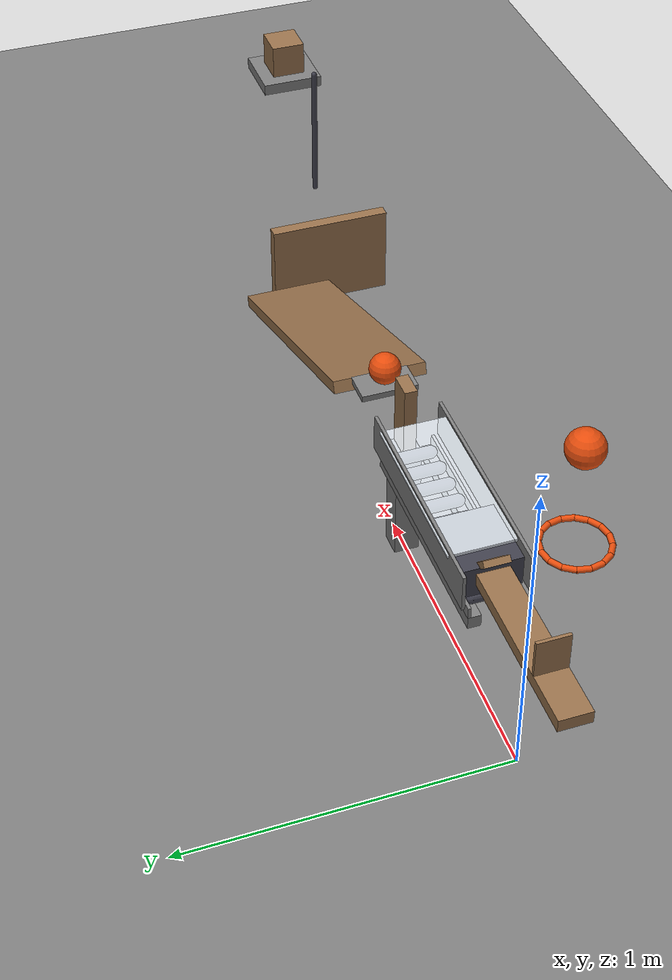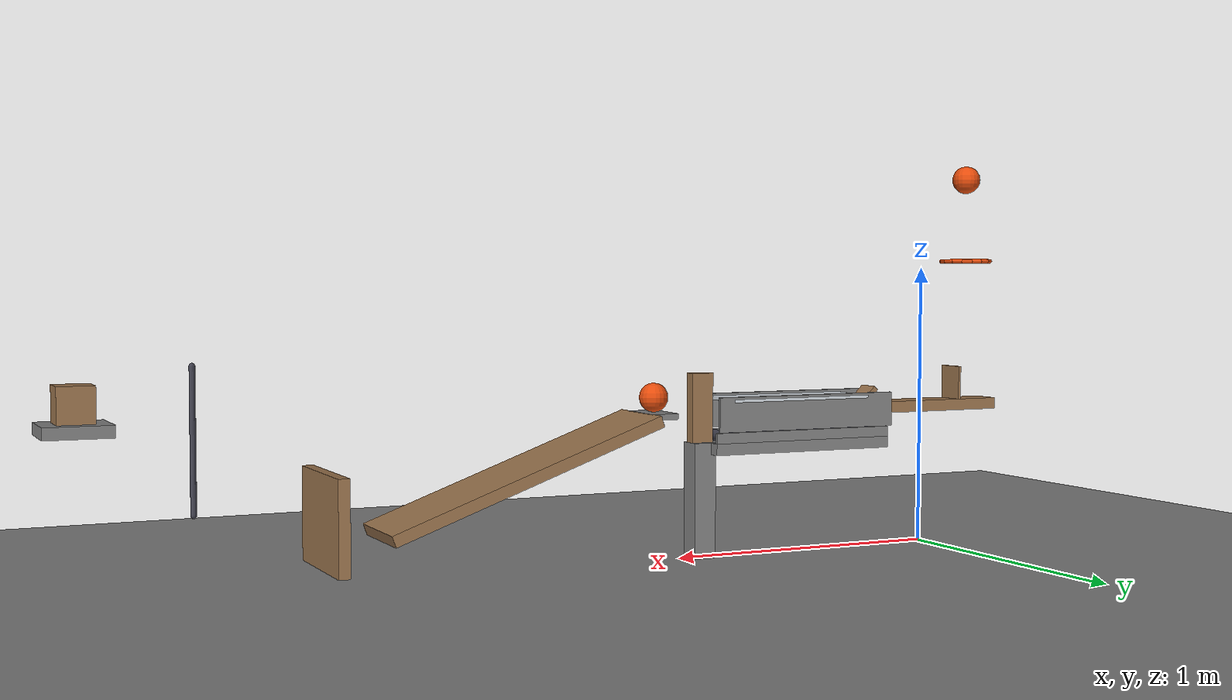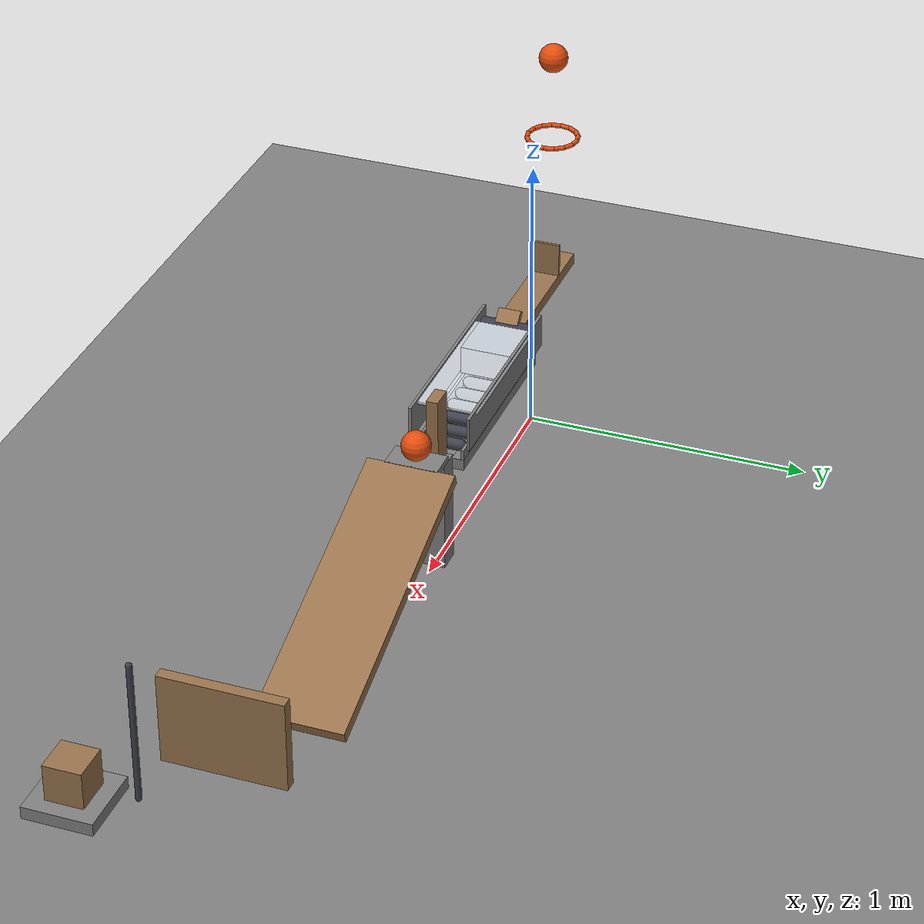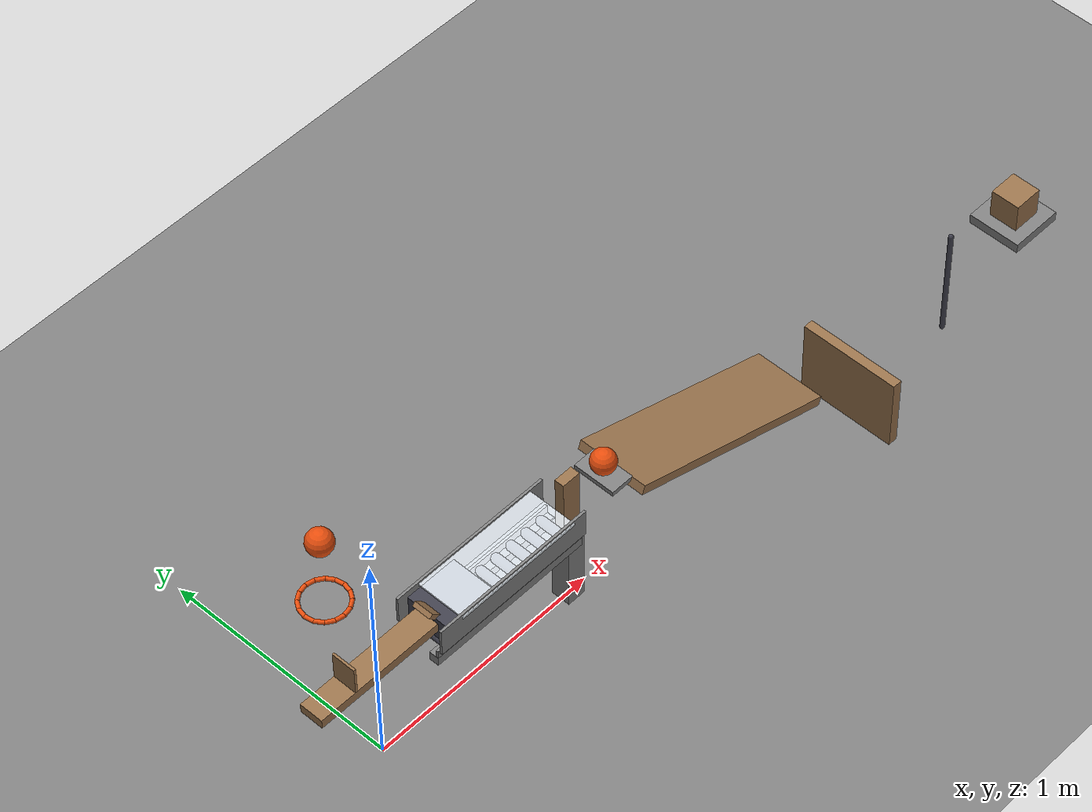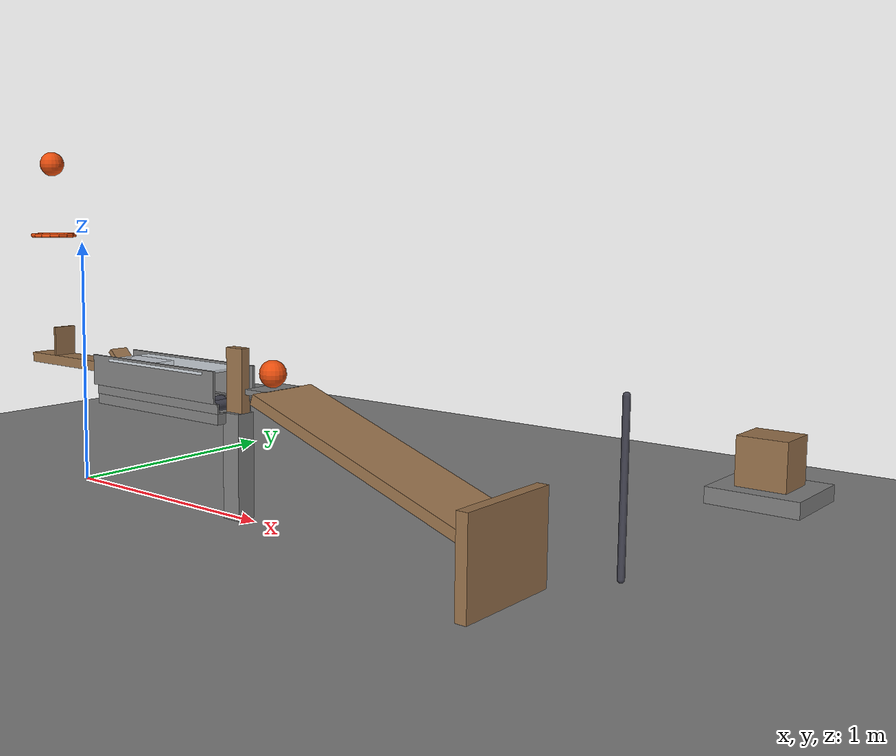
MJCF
<mujoco model="revised_gravity_driven_contact_chain">
  <compiler angle="radian"/>
  <option timestep="0.002"/>
  <worldbody>
    <geom name="floor" type="plane" size="8 8 0.1" friction="0.72 0 0"/>
    <body name="ring1">
      <geom name="ring1_00" type="capsule" size="0.008" fromto="-0.10999 0 1.02627 -0.116689 0.0336761 1.02627" friction="0.72 0 0" solref="0.01 1" rgba="0.9 0.3 0.05 1"/>
      <geom name="ring1_01" type="capsule" size="0.008" fromto="-0.116689 0.0336761 1.02627 -0.135765 0.0622254 1.02627" friction="0.72 0 0" solref="0.01 1" rgba="0.9 0.3 0.05 1"/>
      <geom name="ring1_02" type="capsule" size="0.008" fromto="-0.135765 0.0622254 1.02627 -0.164314 0.0813014 1.02627" friction="0.72 0 0" solref="0.01 1" rgba="0.9 0.3 0.05 1"/>
      <geom name="ring1_03" type="capsule" size="0.008" fromto="-0.164314 0.0813014 1.02627 -0.19799 0.088 1.02627" friction="0.72 0 0" solref="0.01 1" rgba="0.9 0.3 0.05 1"/>
      <geom name="ring1_04" type="capsule" size="0.008" fromto="-0.19799 0.088 1.02627 -0.231666 0.0813014 1.02627" friction="0.72 0 0" solref="0.01 1" rgba="0.9 0.3 0.05 1"/>
      <geom name="ring1_05" type="capsule" size="0.008" fromto="-0.231666 0.0813014 1.02627 -0.260215 0.0622254 1.02627" friction="0.72 0 0" solref="0.01 1" rgba="0.9 0.3 0.05 1"/>
      <geom name="ring1_06" type="capsule" size="0.008" fromto="-0.260215 0.0622254 1.02627 -0.279291 0.0336761 1.02627" friction="0.72 0 0" solref="0.01 1" rgba="0.9 0.3 0.05 1"/>
      <geom name="ring1_07" type="capsule" size="0.008" fromto="-0.279291 0.0336761 1.02627 -0.28599 1.07769e-17 1.02627" friction="0.72 0 0" solref="0.01 1" rgba="0.9 0.3 0.05 1"/>
      <geom name="ring1_08" type="capsule" size="0.008" fromto="-0.28599 1.07769e-17 1.02627 -0.279291 -0.0336761 1.02627" friction="0.72 0 0" solref="0.01 1" rgba="0.9 0.3 0.05 1"/>
      <geom name="ring1_09" type="capsule" size="0.008" fromto="-0.279291 -0.0336761 1.02627 -0.260215 -0.0622254 1.02627" friction="0.72 0 0" solref="0.01 1" rgba="0.9 0.3 0.05 1"/>
      <geom name="ring1_10" type="capsule" size="0.008" fromto="-0.260215 -0.0622254 1.02627 -0.231666 -0.0813014 1.02627" friction="0.72 0 0" solref="0.01 1" rgba="0.9 0.3 0.05 1"/>
      <geom name="ring1_11" type="capsule" size="0.008" fromto="-0.231666 -0.0813014 1.02627 -0.19799 -0.088 1.02627" friction="0.72 0 0" solref="0.01 1" rgba="0.9 0.3 0.05 1"/>
      <geom name="ring1_12" type="capsule" size="0.008" fromto="-0.19799 -0.088 1.02627 -0.164314 -0.0813014 1.02627" friction="0.72 0 0" solref="0.01 1" rgba="0.9 0.3 0.05 1"/>
      <geom name="ring1_13" type="capsule" size="0.008" fromto="-0.164314 -0.0813014 1.02627 -0.135765 -0.0622254 1.02627" friction="0.72 0 0" solref="0.01 1" rgba="0.9 0.3 0.05 1"/>
      <geom name="ring1_14" type="capsule" size="0.008" fromto="-0.135765 -0.0622254 1.02627 -0.116689 -0.0336761 1.02627" friction="0.72 0 0" solref="0.01 1" rgba="0.9 0.3 0.05 1"/>
      <geom name="ring1_15" type="capsule" size="0.008" fromto="-0.116689 -0.0336761 1.02627 -0.10999 -2.15538e-17 1.02627" friction="0.72 0 0" solref="0.01 1" rgba="0.9 0.3 0.05 1"/>
    </body>
    <body name="ball1" pos="-0.19799 0 1.32627">
      <freejoint/>
      <geom name="ball1" type="sphere" pos="0 0 0" size="0.05" mass="0.2" condim="6" friction="0.72 0 0" solref="0.01 1" rgba="0.9 0.3 0.05 1"/>
    </body>
    <body name="lever1" pos="0 0 0.5">
      <joint name="lever_hinge" type="hinge" pos="0 0 0" axis="0 1 0" limited="true" range="0 0.785398" damping="0.04"/>
      <geom name="lever1" type="box" pos="0 0 0" size="0.3 0.05 0.02" mass="0.498" friction="0.72 0 0" solref="0.01 1" rgba="0.6 0.45 0.3 1"/>
      <geom name="lever striking face" type="box" pos="0.28 0 0.01" size="0.0848528 0.04 0.01" euler="0 0.785398 0" mass="0.001" friction="0.72 0 0" solref="0.01 1" rgba="0.6 0.45 0.3 1"/>
      <geom name="lever ball stop" type="box" pos="-0.14 0 0.08" size="0.005 0.05 0.06" mass="0.001" friction="0.72 0 0" solref="0.01 1" rgba="0.6 0.45 0.3 1"/>
    </body>
    <body name="left bearing rail">
      <geom name="left bearing rail" type="box" pos="0.55 0.065 0.38" size="0.35 0.02 0.02" friction="0.72 0 0" solref="0.01 1"/>
    </body>
    <body name="right bearing rail">
      <geom name="right bearing rail" type="box" pos="0.55 -0.065 0.38" size="0.35 0.02 0.02" friction="0.72 0 0" solref="0.01 1"/>
    </body>
    <body name="track rollers1" pos="0.255 0 0.42">
      <freejoint/>
      <geom name="track rollers1" type="capsule" size="0.02" fromto="0 0.055 0 0 -0.055 0" mass="0.002" friction="0.72 0 0" solref="0.01 1" rgba="0.25 0.25 0.3 1"/>
    </body>
    <body name="track rollers2" pos="0.329 0 0.42">
      <freejoint/>
      <geom name="track rollers2" type="capsule" size="0.02" fromto="0 0.055 0 0 -0.055 0" mass="0.002" friction="0.72 0 0" solref="0.01 1" rgba="0.25 0.25 0.3 1"/>
    </body>
    <body name="track rollers3" pos="0.403 0 0.42">
      <freejoint/>
      <geom name="track rollers3" type="capsule" size="0.02" fromto="0 0.055 0 0 -0.055 0" mass="0.002" friction="0.72 0 0" solref="0.01 1" rgba="0.25 0.25 0.3 1"/>
    </body>
    <body name="track rollers4" pos="0.477 0 0.42">
      <freejoint/>
      <geom name="track rollers4" type="capsule" size="0.02" fromto="0 0.055 0 0 -0.055 0" mass="0.002" friction="0.72 0 0" solref="0.01 1" rgba="0.25 0.25 0.3 1"/>
    </body>
    <body name="track rollers5" pos="0.551 0 0.42">
      <freejoint/>
      <geom name="track rollers5" type="capsule" size="0.02" fromto="0 0.055 0 0 -0.055 0" mass="0.002" friction="0.72 0 0" solref="0.01 1" rgba="0.25 0.25 0.3 1"/>
    </body>
    <body name="track rollers6" pos="0.625 0 0.42">
      <freejoint/>
      <geom name="track rollers6" type="capsule" size="0.02" fromto="0 0.055 0 0 -0.055 0" mass="0.002" friction="0.72 0 0" solref="0.01 1" rgba="0.25 0.25 0.3 1"/>
    </body>
    <body name="track rollers7" pos="0.699 0 0.42">
      <freejoint/>
      <geom name="track rollers7" type="capsule" size="0.02" fromto="0 0.055 0 0 -0.055 0" mass="0.002" friction="0.72 0 0" solref="0.01 1" rgba="0.25 0.25 0.3 1"/>
    </body>
    <body name="track rollers8" pos="0.773 0 0.42">
      <freejoint/>
      <geom name="track rollers8" type="capsule" size="0.02" fromto="0 0.055 0 0 -0.055 0" mass="0.002" friction="0.72 0 0" solref="0.01 1" rgba="0.25 0.25 0.3 1"/>
    </body>
    <body name="track rollers9" pos="0.847 0 0.42">
      <freejoint/>
      <geom name="track rollers9" type="capsule" size="0.02" fromto="0 0.055 0 0 -0.055 0" mass="0.002" friction="0.72 0 0" solref="0.01 1" rgba="0.25 0.25 0.3 1"/>
    </body>
    <body name="left roller guide">
      <geom name="left roller guide" type="box" pos="0.55 0.081 0.418" size="0.35 0.005 0.018" friction="0.72 0 0" solref="0.01 1"/>
    </body>
    <body name="right roller guide">
      <geom name="right roller guide" type="box" pos="0.55 -0.081 0.418" size="0.35 0.005 0.018" friction="0.72 0 0" solref="0.01 1"/>
    </body>
    <body name="left cart guide">
      <geom name="left cart guide" type="box" pos="0.55 0.101 0.5" size="0.35 0.005 0.06" friction="0.72 0 0" solref="0.01 1"/>
    </body>
    <body name="right cart guide">
      <geom name="right cart guide" type="box" pos="0.55 -0.101 0.5" size="0.35 0.005 0.06" friction="0.72 0 0" solref="0.01 1"/>
    </body>
    <body name="cart retaining roof">
      <geom name="cart retaining roof" type="box" pos="0.57 0 0.547" size="0.27 0.11 0.005" friction="0.72 0 0" solref="0.01 1" rgba="0.92 0.95 0.98 0.85"/>
    </body>
    <body name="cart1" pos="0.35 0 0.49">
      <freejoint/>
      <geom name="cart1" type="box" pos="0 0 0" size="0.11 0.09 0.05" mass="0.5" friction="0.72 0 0" solref="0.01 1" rgba="0.25 0.25 0.3 1"/>
    </body>
    <body name="domino pedestal">
      <geom name="domino pedestal" type="box" pos="0.92 0 0.2" size="0.04 0.04 0.2" friction="0.72 0 0" solref="0.01 1"/>
    </body>
    <body name="domino1" pos="0.92 0 0.52">
      <freejoint/>
      <geom name="domino1" type="box" pos="0 0 0" size="0.04 0.02 0.12" mass="0.25" friction="0.72 0 0" solref="0.01 1" rgba="0.6 0.45 0.3 1"/>
    </body>
    <body name="ball perch">
      <geom name="ball perch" type="box" pos="1.1 0 0.5008" size="0.05 0.09 0.01" friction="0.72 0 0" solref="0.01 1"/>
    </body>
    <body name="ball2" pos="1.1 0 0.5608">
      <freejoint/>
      <geom name="ball2" type="sphere" pos="0 0 0" size="0.05" mass="0.2" condim="6" friction="0.72 0 0" solref="0.01 1" rgba="0.9 0.3 0.05 1"/>
    </body>
    <body name="ramp1">
      <geom name="ramp1" type="box" pos="1.60985 0 0.32101" size="0.5 0.15 0.02" euler="0 0.349066 0" friction="0.72 0 0" solref="0.01 1" rgba="0.6 0.45 0.3 1"/>
    </body>
    <body name="door1" pos="2.19969 -0.4 0.18">
      <joint name="door_hinge" type="hinge" pos="0 0 0" axis="0 0 1" limited="true" range="-1.22173 0" damping="0.04"/>
      <geom name="door1" type="box" pos="0 0.21 0" size="0.02 0.21 0.16" mass="0.45" friction="0.72 0 0" solref="0.01 1" rgba="0.6 0.45 0.3 1"/>
    </body>
    <body name="pendulum1" pos="2.60969 -0.274 0.2">
      <joint name="pendulum_hinge" type="hinge" pos="0 0 0" axis="0 1 0" limited="true" range="0 0.663225" damping="0.04"/>
      <geom name="pendulum1" type="capsule" size="0.01" fromto="0 0 0.01 0 0 0.49" mass="0.35" friction="0.72 0 0" solref="0.01 1" rgba="0.25 0.25 0.3 1"/>
    </body>
    <body name="block pedestal">
      <geom name="block pedestal" type="box" pos="2.97769 -0.274 0.5" size="0.11 0.11 0.02" friction="0.72 0 0" solref="0.01 1"/>
    </body>
    <body name="block1" pos="2.97769 -0.274 0.58">
      <freejoint/>
      <geom name="block1" type="box" pos="0 0 0" size="0.06 0.06 0.06" mass="0.35" friction="0.72 0 0" solref="0.01 1" rgba="0.6 0.45 0.3 1"/>
    </body>
  </worldbody>
  <keyframe>
    <key name="start" qpos="-0.19799 0 1.32627 1 0 0 0 0.785398 0.255 0 0.42 1 0 0 0 0.329 0 0.42 1 0 0 0 0.403 0 0.42 1 0 0 0 0.477 0 0.42 1 0 0 0 0.551 0 0.42 1 0 0 0 0.625 0 0.42 1 0 0 0 0.699 0 0.42 1 0 0 0 0.773 0 0.42 1 0 0 0 0.847 0 0.42 1 0 0 0 0.35 0 0.49 1 0 0 0 0.92 0 0.52 1 0 0 0 1.1 0 0.5608 1 0 0 0 0 0 2.97769 -0.274 0.58 1 0 0 0" qvel="0 0 0 0 0 0 0 0 0 0 0 0 0 0 0 0 0 0 0 0 0 0 0 0 0 0 0 0 0 0 0 0 0 0 0 0 0 0 0 0 0 0 0 0 0 0 0 0 0 0 0 0 0 0 0 0 0 0 0 0 0 0 0 0 0 0 0 0 0 0 0 0 0 0 0 0 0 0 0 0 0 0 0 0 0 0 0"/>
  </keyframe>
</mujoco>
